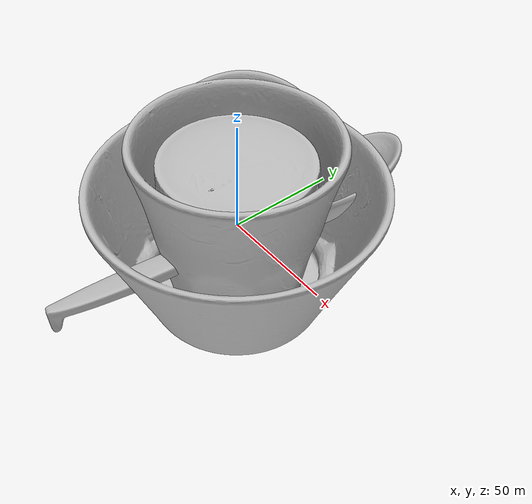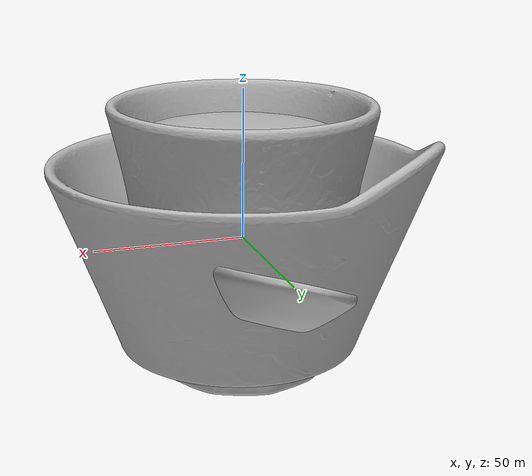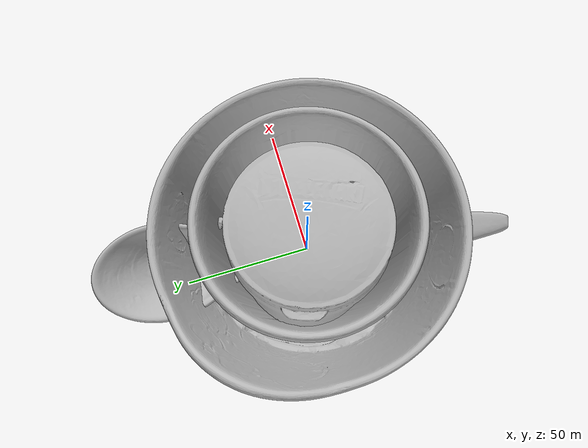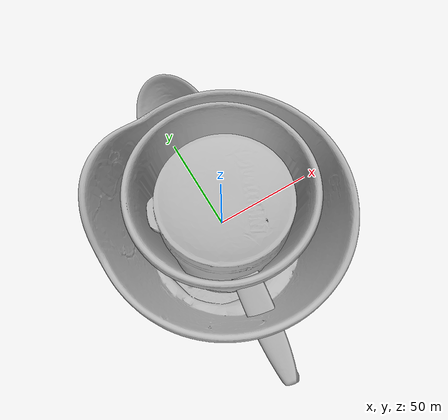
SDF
<sdf version="1.4">
 <world name="default">
  <light name="light1" type="point">
   <pose>0 0 1 0 0 0</pose>
   <diffuse>3 3 3 1</diffuse>
   <specular>3 3 3 1</specular>
  </light>
  <light name="light2" type="point">
   <pose>0 0.5 2 0 0 0</pose>
   <diffuse>1 1 1 1</diffuse>
   <specular>1 1 1 1</specular>
  </light>
  <light name="light3" type="point">
   <pose>0 0.5 2 0 0 0</pose>
   <diffuse>3 3 3 1</diffuse>
   <specular>3 3 3 1</specular>
  </light>
  <scene><ambient>0.7 0.7 0.7</ambient></scene>
  <model name="bottle1">
   <link name="link_bottle1">
    <collision name="default">
     <geometry>
      <mesh><uri>model://green_arrow/collision_meshes/collision.obj</uri><scale>1.0 1.0 1.0</scale></mesh>
     </geometry>
     <surface>
      <friction><ode><mu>0.5</mu><mu2>0.5</mu2></ode></friction>
      <contact><ode><max_vel>0</max_vel><min_depth>0.0001</min_depth><kp>1e8</kp></ode></contact>
     </surface>
    </collision>
    <visual name="default">
     <geometry>
      <mesh><uri>model://green_arrow/visual_meshes/visual.dae</uri><scale>1.0 1.0 1.0</scale></mesh>
     </geometry>
    </visual>
    <inertial>
     <mass>0.2764224410057068</mass>
     <pose>0.0005358477937988937 -0.0008270691032521427 0.002210969105362892 -0.06332196008274972 0.012988210902137025 0.674142157837799</pose>
     <inertia>
      <ixx>0.00020051825</ixx>
      <iyy>0.00020021446</iyy>
      <izz>0.00012947427</izz>
      <ixy>0</ixy>
      <ixz>0</ixz>
      <iyz>0</iyz>
     </inertia>
    </inertial>
   </link>
   <pose>0.18443037569522858 -0.3678422272205353 0.038961656391620636 0.045284905358039744 0.024256570267870353 0.5182893114775291</pose>
  </model>
  <model name="bottle2">
   <link name="link_bottle2">
    <collision name="default">
     <geometry>
      <mesh><uri>model://pure_zhen/collision_meshes/collision.obj</uri><scale>1.0 1.0 1.0</scale></mesh>
     </geometry>
     <surface>
      <friction><ode><mu>0.5</mu><mu2>0.5</mu2></ode></friction>
      <contact><ode><max_vel>0</max_vel><min_depth>0.0001</min_depth><kp>1e8</kp></ode></contact>
     </surface>
    </collision>
    <visual name="default">
     <geometry>
      <mesh><uri>model://pure_zhen/visual_meshes/visual.dae</uri><scale>1.0 1.0 1.0</scale></mesh>
     </geometry>
    </visual>
    <inertial>
     <mass>0.2372884750366211</mass>
     <pose>-8.582299778936431e-05 0.0002452346670906991 -0.0015797418309375644 -0.027641670524606855 0.005623077019143168 0.30585846122319743</pose>
     <inertia>
      <ixx>0.0007112664</ixx>
      <iyy>0.00071145216</iyy>
      <izz>7.51383e-05</izz>
      <ixy>0</ixy>
      <ixz>0</ixz>
      <iyz>0</iyz>
     </inertia>
    </inertial>
   </link>
   <pose>0.08792727440595627 0.3184344172477722 0.09194844216108322 0.019489640447907946 -0.016089486529478548 -3.099347085951718</pose>
  </model>
  <model name="silverware1">
   <link name="link_silverware1">
    <collision name="default">
     <geometry>
      <mesh><uri>model://doraemon_spoon/collision_meshes/collision.obj</uri><scale>1.0 1.0 1.0</scale></mesh>
     </geometry>
     <surface>
      <friction><ode><mu>0.5</mu><mu2>0.5</mu2></ode></friction>
      <contact><ode><max_vel>0</max_vel><min_depth>0.0001</min_depth><kp>1e8</kp></ode></contact>
     </surface>
    </collision>
    <visual name="default">
     <geometry>
      <mesh><uri>model://doraemon_spoon/visual_meshes/visual.dae</uri><scale>1.0 1.0 1.0</scale></mesh>
     </geometry>
    </visual>
    <inertial>
     <mass>0.020818473771214485</mass>
     <pose>-0.022165074944496155 -0.0006374582881107926 -0.0033325462136417627 -0.009147017253597407 0.0738041759980984 -0.014123826591698564</pose>
     <inertia>
      <ixx>1.6307007e-06</ixx>
      <iyy>4.631433e-05</iyy>
      <izz>4.7101734e-05</izz>
      <ixy>0</ixy>
      <ixz>0</ixz>
      <iyz>0</iyz>
     </inertia>
    </inertial>
   </link>
   <pose>0.23168151080608368 -0.00022609904408454895 0.014739392325282097 0.27882113479928583 -0.010335714818713796 -1.699682307227782</pose>
  </model>
  <model name="stationery1">
   <link name="link_stationery1">
    <collision name="default">
     <geometry>
      <mesh><uri>model://correction_fuid/collision_meshes/collision.obj</uri><scale>1.0 1.0 1.0</scale></mesh>
     </geometry>
     <surface>
      <friction><ode><mu>0.5</mu><mu2>0.5</mu2></ode></friction>
      <contact><ode><max_vel>0</max_vel><min_depth>0.0001</min_depth><kp>1e8</kp></ode></contact>
     </surface>
    </collision>
    <visual name="default">
     <geometry>
      <mesh><uri>model://correction_fuid/visual_meshes/visual.dae</uri><scale>1.0 1.0 1.0</scale></mesh>
     </geometry>
    </visual>
    <inertial>
     <mass>0.03337494283914566</mass>
     <pose>-0.00012557735317386687 -0.0009722886024974287 -0.001618212671019137 -0.010846603423614418 0.019488389217657873 -0.01599245375892703</pose>
     <inertia>
      <ixx>3.2324202e-05</ixx>
      <iyy>1.9563013e-06</iyy>
      <izz>3.3165503e-05</izz>
      <ixy>0</ixy>
      <ixz>0</ixz>
      <iyz>0</iyz>
     </inertia>
    </inertial>
   </link>
   <pose>0.2574525475502014 -0.3079104423522949 0.009632828645408154 -0.0017271035379627256 -0.0561685391047498 0.5902025292486304</pose>
  </model>
  <model name="bowl1">
   <link name="link_bowl1">
    <collision name="default">
     <geometry>
      <mesh><uri>model://hello_kitty_bowl/collision_meshes/collision.obj</uri><scale>1.0 1.0 1.0</scale></mesh>
     </geometry>
     <surface>
      <friction><ode><mu>0.5</mu><mu2>0.5</mu2></ode></friction>
      <contact><ode><max_vel>0</max_vel><min_depth>0.0001</min_depth><kp>1e8</kp></ode></contact>
     </surface>
    </collision>
    <visual name="default">
     <geometry>
      <mesh><uri>model://hello_kitty_bowl/visual_meshes/visual.dae</uri><scale>1.0 1.0 1.0</scale></mesh>
     </geometry>
    </visual>
    <inertial>
     <mass>0.11590971797704697</mass>
     <pose>-0.0015402117278426886 0.0004577837826218456 -0.0080512510612607 0.004152729053700843 -0.12227221811834889 0.04345084117661168</pose>
     <inertia>
      <ixx>0.00017210246</ixx>
      <iyy>0.00018182951</iyy>
      <izz>0.00025734986</izz>
      <ixy>0</ixy>
      <ixz>0</ixz>
      <iyz>0</iyz>
     </inertia>
    </inertial>
   </link>
   <pose>0.03693944588303566 0.1473805010318756 0.037413064390420914 9.099523682264947e-05 1.7491520826599058e-05 2.288272404211133</pose>
  </model>
  <model name="cup1">
   <link name="link_cup1">
    <collision name="default">
     <geometry>
      <mesh><uri>model://hello_kitty_cup/collision_meshes/collision.obj</uri><scale>1.0 1.0 1.0</scale></mesh>
     </geometry>
     <surface>
      <friction><ode><mu>0.5</mu><mu2>0.5</mu2></ode></friction>
      <contact><ode><max_vel>0</max_vel><min_depth>0.0001</min_depth><kp>1e8</kp></ode></contact>
     </surface>
    </collision>
    <visual name="default">
     <geometry>
      <mesh><uri>model://hello_kitty_cup/visual_meshes/visual.dae</uri><scale>1.0 1.0 1.0</scale></mesh>
     </geometry>
    </visual>
    <inertial>
     <mass>0.06483803689479828</mass>
     <pose>0.00027251249412074685 0.0002795030304696411 0.003044978016987443 0.05779149237921037 0.007964744961503711 -0.020451485374324563</pose>
     <inertia>
      <ixx>8.928983e-05</ixx>
      <iyy>9.0285175e-05</iyy>
      <izz>7.52867e-05</izz>
      <ixy>0</ixy>
      <ixz>0</ixz>
      <iyz>0</iyz>
     </inertia>
    </inertial>
   </link>
   <pose>0.1743006557226181 0.23282352089881897 0.0462140254676342 -0.005714593950369852 0.010789997587796658 -2.334974441066422</pose>
  </model>
  <model name="plate1">
   <link name="link_plate1">
    <collision name="default">
     <geometry>
      <mesh><uri>model://hello_kitty_plate/collision_meshes/collision.obj</uri><scale>1.0 1.0 1.0</scale></mesh>
     </geometry>
     <surface>
      <friction><ode><mu>0.5</mu><mu2>0.5</mu2></ode></friction>
      <contact><ode><max_vel>0</max_vel><min_depth>0.0001</min_depth><kp>1e8</kp></ode></contact>
     </surface>
    </collision>
    <visual name="default">
     <geometry>
      <mesh><uri>model://hello_kitty_plate/visual_meshes/visual.dae</uri><scale>1.0 1.0 1.0</scale></mesh>
     </geometry>
    </visual>
    <inertial>
     <mass>0.035439908504486084</mass>
     <pose>0.007314295507967472 0.00028937257593497634 -0.0027947179041802883 -0.00010432032854243346 -0.007054443681780748 -0.014449040989024118</pose>
     <inertia>
      <ixx>6.833875e-05</ixx>
      <iyy>0.00012897578</iyy>
      <izz>0.00019583687</izz>
      <ixy>0</ixy>
      <ixz>0</ixz>
      <iyz>0</iyz>
     </inertia>
    </inertial>
   </link>
   <pose>0.1970597356557846 -0.1325002759695053 0.03358098492026329 0.07944523816742237 -0.2898938930058496 2.2790339205115635</pose>
  </model>
  <model name="box4">
   <link name="link_box4">
    <collision name="default">
     <geometry>
      <mesh><uri>model://wooden_puzzle1/collision_meshes/collision.obj</uri><scale>1.0 1.0 1.0</scale></mesh>
     </geometry>
     <surface>
      <friction><ode><mu>0.5</mu><mu2>0.5</mu2></ode></friction>
      <contact><ode><max_vel>0</max_vel><min_depth>0.0001</min_depth><kp>1e8</kp></ode></contact>
     </surface>
    </collision>
    <visual name="default">
     <geometry>
      <mesh><uri>model://wooden_puzzle1/visual_meshes/visual.dae</uri><scale>1.0 1.0 1.0</scale></mesh>
     </geometry>
    </visual>
    <inertial>
     <mass>0.022725893184542656</mass>
     <pose>-0.00017350679263472557 7.972260937094688e-05 -9.191554272547364e-05 -0.07784633272711022 -0.26361483493671084 -0.5528696267966513</pose>
     <inertia>
      <ixx>4.2877546e-06</ixx>
      <iyy>4.205213e-06</iyy>
      <izz>4.2553816e-06</izz>
      <ixy>0</ixy>
      <ixz>0</ixz>
      <iyz>0</iyz>
     </inertia>
    </inertial>
   </link>
   <pose>0.06595903635025024 -0.19042859971523285 0.01680193468928337 0.010518055438545223 -0.009459379385498684 2.5629497227758318</pose>
  </model>
  <physics type="ode">
   <max_contacts>50</max_contacts>
   <ode>
    <solver><type>quick</type><iters>75</iters></solver>
    <constraints>
     <contact_max_correcting_vel>0</contact_max_correcting_vel>
     <contact_surface_layer>0</contact_surface_layer>
    </constraints>
   </ode>
  </physics>
 </world>
</sdf>
